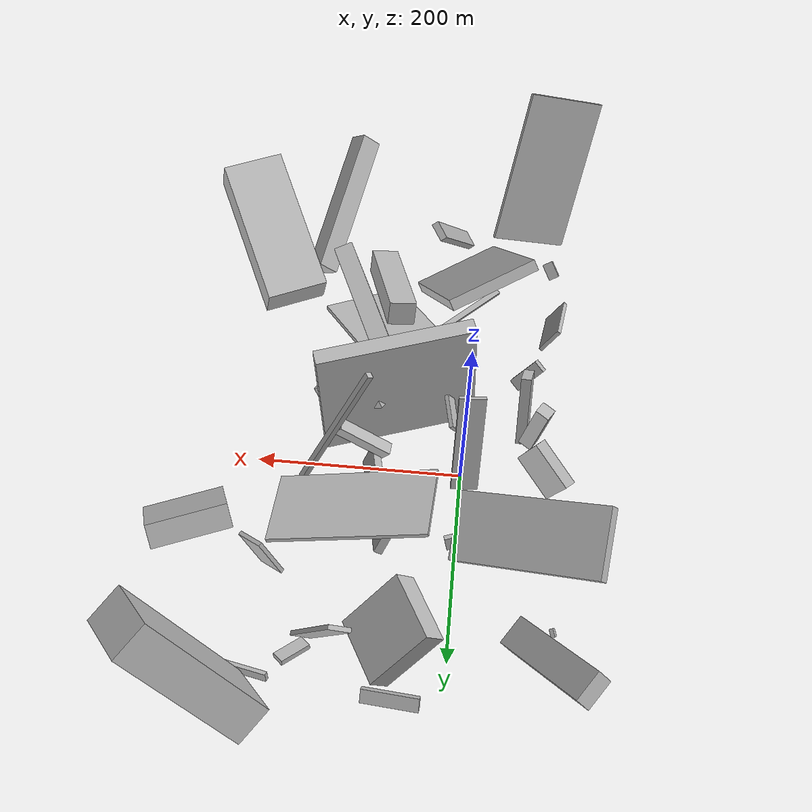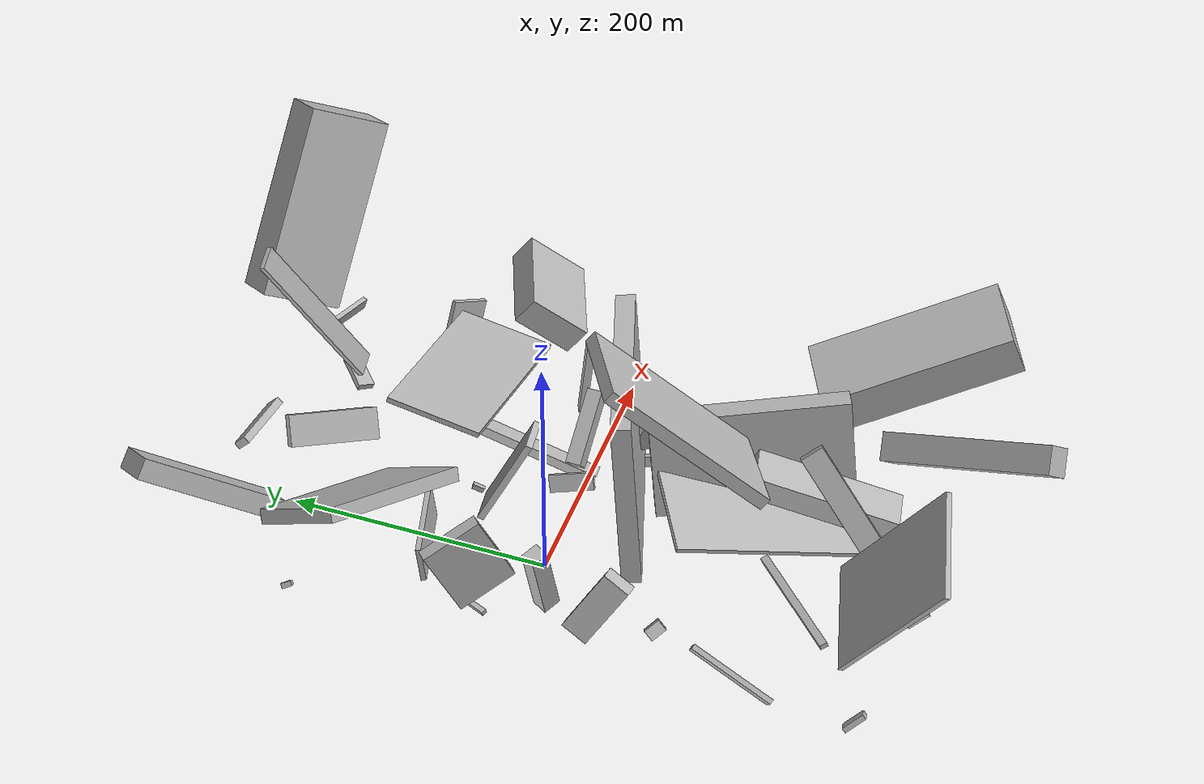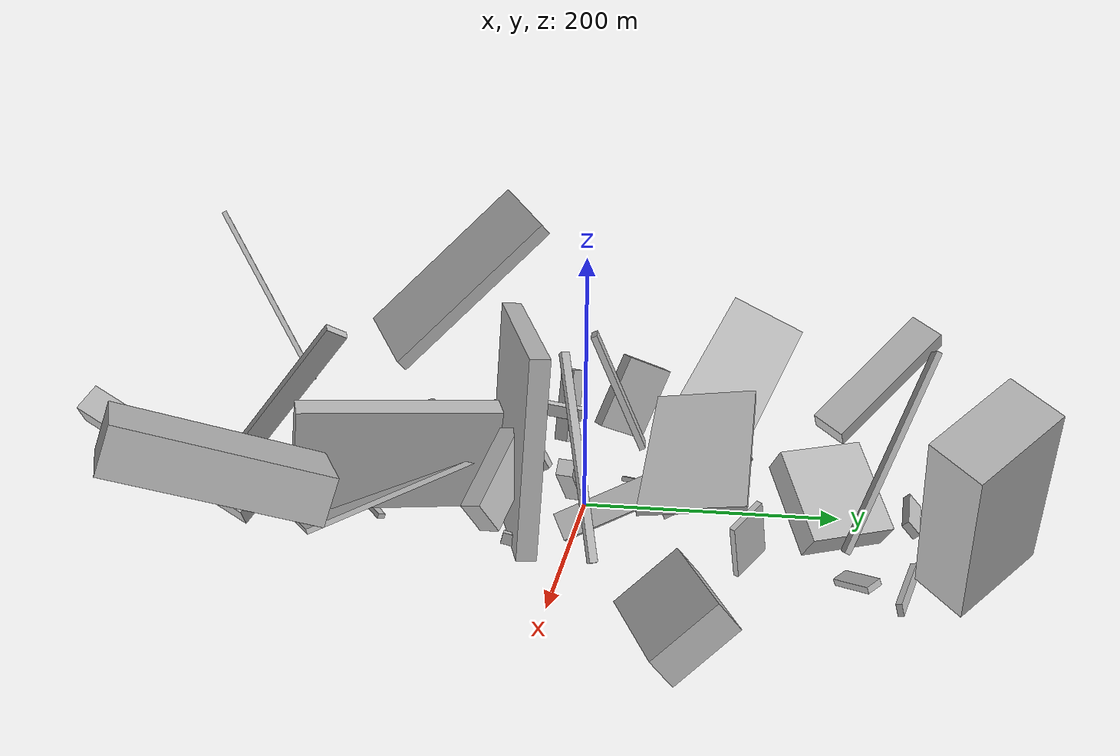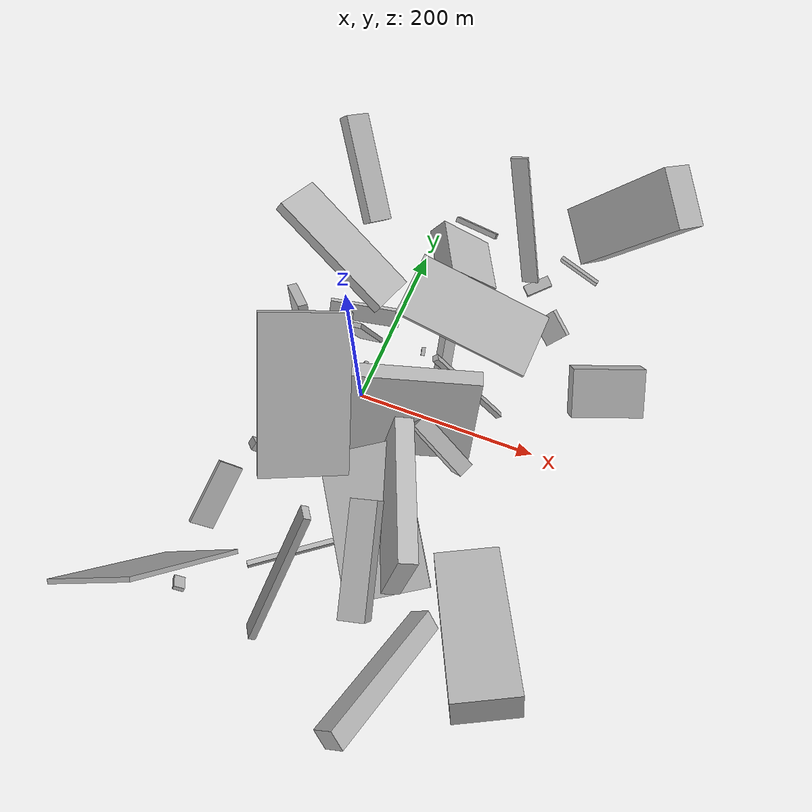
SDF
<sdf version="1.6">
 <world name="default">
  <model name="building_2">
   <static>0</static>
   <pose>-62.30996359319885 -24.676737310500073 34.17761925969418 -0.20309235522458113 -0.034233730035072484 1.0384694072110976</pose>
   <link name="link">
    <gravity>0</gravity>
    <pose>0 0 30.0 0 0 0</pose>
    <collision name="collision"><geometry><box><size>13 14 60</size></box></geometry></collision>
    <visual name="visual">
     <cast_shadows>0</cast_shadows>
     <geometry><box><size>13 14 60</size></box></geometry>
     <material>
      <script>
       <uri>model://HANNAS_wall/materials/scripts</uri>
       <uri>model://HANNAS_wall/materials/textures</uri>
       <name>vrc/HANNAS_wall</name>
      </script>
     </material>
    </visual>
   </link>
  </model>
  <model name="building_3">
   <static>0</static>
   <pose>-70.6835252391423 19.002689440386007 42.22310869759319 -0.10379882535049893 -0.41568116773262603 -0.8048089939529557</pose>
   <link name="link">
    <gravity>0</gravity>
    <pose>0 0 31.0 0 0 0</pose>
    <collision name="collision"><geometry><box><size>47 10 62</size></box></geometry></collision>
    <visual name="visual">
     <cast_shadows>0</cast_shadows>
     <geometry><box><size>47 10 62</size></box></geometry>
     <material>
      <script>
       <uri>model://HANNAS_wall/materials/scripts</uri>
       <uri>model://HANNAS_wall/materials/textures</uri>
       <name>vrc/HANNAS_wall</name>
      </script>
     </material>
    </visual>
   </link>
  </model>
  <model name="building_4">
   <static>0</static>
   <pose>18.91199895960152 -153.28543032838195 132.07125624042348 0.8041579647066868 -0.21410462562015903 -2.639426286338732</pose>
   <link name="link">
    <gravity>0</gravity>
    <pose>0 0 75.0 0 0 0</pose>
    <collision name="collision"><geometry><box><size>82 10 150</size></box></geometry></collision>
    <visual name="visual">
     <cast_shadows>0</cast_shadows>
     <geometry><box><size>82 10 150</size></box></geometry>
     <material>
      <script>
       <uri>model://HANNAS_wall/materials/scripts</uri>
       <uri>model://HANNAS_wall/materials/textures</uri>
       <name>vrc/HANNAS_wall</name>
      </script>
     </material>
    </visual>
   </link>
  </model>
  <model name="building_6">
   <static>0</static>
   <pose>106.7134492548971 -124.52359481797544 65.4602296512154 -0.27156495607750386 -1.3175282092120695 0.671573622714061</pose>
   <link name="link">
    <gravity>0</gravity>
    <pose>0 0 9.5 0 0 0</pose>
    <collision name="collision"><geometry><box><size>81 150 19</size></box></geometry></collision>
    <visual name="visual">
     <cast_shadows>0</cast_shadows>
     <geometry><box><size>81 150 19</size></box></geometry>
     <material>
      <script>
       <uri>model://HANNAS_wall/materials/scripts</uri>
       <uri>model://HANNAS_wall/materials/textures</uri>
       <name>vrc/HANNAS_wall</name>
      </script>
     </material>
    </visual>
   </link>
  </model>
  <model name="building_7">
   <static>0</static>
   <pose>0.29345417666929663 94.50894323390452 64.81087686684938 0.7648560636912773 0.9202908543781954 -2.5970790585344474</pose>
   <link name="link">
    <gravity>0</gravity>
    <pose>0 0 75.0 0 0 0</pose>
    <collision name="collision"><geometry><box><size>11 64 150</size></box></geometry></collision>
    <visual name="visual">
     <cast_shadows>0</cast_shadows>
     <geometry><box><size>11 64 150</size></box></geometry>
     <material>
      <script>
       <uri>model://HANNAS_wall/materials/scripts</uri>
       <uri>model://HANNAS_wall/materials/textures</uri>
       <name>vrc/HANNAS_wall</name>
      </script>
     </material>
    </visual>
   </link>
  </model>
  <model name="building_8">
   <static>0</static>
   <pose>66.03331357750645 160.53366012584337 35.18199939430771 1.5495517929880975 0.803483992353639 -2.665204391215836</pose>
   <link name="link">
    <gravity>0</gravity>
    <pose>0 0 33.0 0 0 0</pose>
    <collision name="collision"><geometry><box><size>24 73 66</size></box></geometry></collision>
    <visual name="visual">
     <cast_shadows>0</cast_shadows>
     <geometry><box><size>24 73 66</size></box></geometry>
     <material>
      <script>
       <uri>model://HANNAS_wall/materials/scripts</uri>
       <uri>model://HANNAS_wall/materials/textures</uri>
       <name>vrc/HANNAS_wall</name>
      </script>
     </material>
    </visual>
   </link>
  </model>
  <model name="building_9">
   <static>0</static>
   <pose>161.0188490262707 -216.40818578218892 44.59426059482485 -1.0247205011646208 -0.6785951792698831 2.5395631193376347</pose>
   <link name="link">
    <gravity>0</gravity>
    <pose>0 0 75.0 0 0 0</pose>
    <collision name="collision"><geometry><box><size>21 22 150</size></box></geometry></collision>
    <visual name="visual">
     <cast_shadows>0</cast_shadows>
     <geometry><box><size>21 22 150</size></box></geometry>
     <material>
      <script>
       <uri>model://HANNAS_wall/materials/scripts</uri>
       <uri>model://HANNAS_wall/materials/textures</uri>
       <name>vrc/HANNAS_wall</name>
      </script>
     </material>
    </visual>
   </link>
  </model>
  <model name="building_12">
   <static>0</static>
   <pose>-77.19294636462675 -269.51004808059054 20.479311321973288 -2.414408408393758 -0.7156847994212409 1.2544545302063814</pose>
   <link name="link">
    <gravity>0</gravity>
    <pose>0 0 9.0 0 0 0</pose>
    <collision name="collision"><geometry><box><size>4 11 18</size></box></geometry></collision>
    <visual name="visual">
     <cast_shadows>0</cast_shadows>
     <geometry><box><size>4 11 18</size></box></geometry>
     <material>
      <script>
       <uri>model://HANNAS_wall/materials/scripts</uri>
       <uri>model://HANNAS_wall/materials/textures</uri>
       <name>vrc/HANNAS_wall</name>
      </script>
     </material>
    </visual>
   </link>
  </model>
  <model name="building_13">
   <static>0</static>
   <pose>-61.45563250472297 -110.27774521881726 29.419442293491954 0.6772632266742373 -0.791249350278188 -2.806456134775632</pose>
   <link name="link">
    <gravity>0</gravity>
    <pose>0 0 4.5 0 0 0</pose>
    <collision name="collision"><geometry><box><size>34 13 9</size></box></geometry></collision>
    <visual name="visual">
     <cast_shadows>0</cast_shadows>
     <geometry><box><size>34 13 9</size></box></geometry>
     <material>
      <script>
       <uri>model://HANNAS_wall/materials/scripts</uri>
       <uri>model://HANNAS_wall/materials/textures</uri>
       <name>vrc/HANNAS_wall</name>
      </script>
     </material>
    </visual>
   </link>
  </model>
  <model name="building_15">
   <static>0</static>
   <pose>134.4348815428153 209.42326701230138 9.263737038040075 -2.602345141734881 -1.2617041934833815 -1.3393757203927898</pose>
   <link name="link">
    <gravity>0</gravity>
    <pose>0 0 6.5 0 0 0</pose>
    <collision name="collision"><geometry><box><size>5 31 13</size></box></geometry></collision>
    <visual name="visual">
     <cast_shadows>0</cast_shadows>
     <geometry><box><size>5 31 13</size></box></geometry>
     <material>
      <script>
       <uri>model://HANNAS_wall/materials/scripts</uri>
       <uri>model://HANNAS_wall/materials/textures</uri>
       <name>vrc/HANNAS_wall</name>
      </script>
     </material>
    </visual>
   </link>
  </model>
  <model name="building_19">
   <static>0</static>
   <pose>165.3981548431019 131.9306753980968 28.11357581600285 0.19492897491317457 -0.4069454097909742 2.481444547065339</pose>
   <link name="link">
    <gravity>0</gravity>
    <pose>0 0 22.0 0 0 0</pose>
    <collision name="collision"><geometry><box><size>30 4 44</size></box></geometry></collision>
    <visual name="visual">
     <cast_shadows>0</cast_shadows>
     <geometry><box><size>30 4 44</size></box></geometry>
     <material>
      <script>
       <uri>model://HANNAS_wall/materials/scripts</uri>
       <uri>model://HANNAS_wall/materials/textures</uri>
       <name>vrc/HANNAS_wall</name>
      </script>
     </material>
    </visual>
   </link>
  </model>
  <model name="building_21">
   <static>0</static>
   <pose>96.09918597208167 93.37554006197526 84.32470593603128 3.0131583381761766 -0.2653099415394041 3.121613230415533</pose>
   <link name="link">
    <gravity>0</gravity>
    <pose>0 0 2.0 0 0 0</pose>
    <collision name="collision"><geometry><box><size>150 74 4</size></box></geometry></collision>
    <visual name="visual">
     <cast_shadows>0</cast_shadows>
     <geometry><box><size>150 74 4</size></box></geometry>
     <material>
      <script>
       <uri>model://HANNAS_wall/materials/scripts</uri>
       <uri>model://HANNAS_wall/materials/textures</uri>
       <name>vrc/HANNAS_wall</name>
      </script>
     </material>
    </visual>
   </link>
  </model>
  <model name="building_22">
   <static>0</static>
   <pose>-57.32016889578158 191.70829434736396 55.509443132818994 0.553135075550662 0.7984209783057081 2.9151053955992294</pose>
   <link name="link">
    <gravity>0</gravity>
    <pose>0 0 60.5 0 0 0</pose>
    <collision name="collision"><geometry><box><size>16 29 121</size></box></geometry></collision>
    <visual name="visual">
     <cast_shadows>0</cast_shadows>
     <geometry><box><size>16 29 121</size></box></geometry>
     <material>
      <script>
       <uri>model://HANNAS_wall/materials/scripts</uri>
       <uri>model://HANNAS_wall/materials/textures</uri>
       <name>vrc/HANNAS_wall</name>
      </script>
     </material>
    </visual>
   </link>
  </model>
  <model name="building_24">
   <static>0</static>
   <pose>65.14352680283017 -34.716889262339464 84.10163516653577 1.5115871313730653 0.054670265715133955 0.31112831231474797</pose>
   <link name="link">
    <gravity>0</gravity>
    <pose>0 0 7.5 0 0 0</pose>
    <collision name="collision"><geometry><box><size>150 150 15</size></box></geometry></collision>
    <visual name="visual">
     <cast_shadows>0</cast_shadows>
     <geometry><box><size>150 150 15</size></box></geometry>
     <material>
      <script>
       <uri>model://HANNAS_wall/materials/scripts</uri>
       <uri>model://HANNAS_wall/materials/textures</uri>
       <name>vrc/HANNAS_wall</name>
      </script>
     </material>
    </visual>
   </link>
  </model>
  <model name="building_27">
   <static>0</static>
   <pose>207.1519929628996 255.325003335923 104.53418107179111 2.0273466470456127 -0.487873067766701 2.2152529398470784</pose>
   <link name="link">
    <gravity>0</gravity>
    <pose>0 0 19.0 0 0 0</pose>
    <collision name="collision"><geometry><box><size>66 150 38</size></box></geometry></collision>
    <visual name="visual">
     <cast_shadows>0</cast_shadows>
     <geometry><box><size>66 150 38</size></box></geometry>
     <material>
      <script>
       <uri>model://HANNAS_wall/materials/scripts</uri>
       <uri>model://HANNAS_wall/materials/textures</uri>
       <name>vrc/HANNAS_wall</name>
      </script>
     </material>
    </visual>
   </link>
  </model>
  <model name="building_28">
   <static>0</static>
   <pose>119.733350970395 12.83735176218203 81.10505599907323 1.54873872697791 -0.4752062776070064 0.49263243144404273</pose>
   <link name="link">
    <gravity>0</gravity>
    <pose>0 0 3.0 0 0 0</pose>
    <collision name="collision"><geometry><box><size>6 150 6</size></box></geometry></collision>
    <visual name="visual">
     <cast_shadows>0</cast_shadows>
     <geometry><box><size>6 150 6</size></box></geometry>
     <material>
      <script>
       <uri>model://HANNAS_wall/materials/scripts</uri>
       <uri>model://HANNAS_wall/materials/textures</uri>
       <name>vrc/HANNAS_wall</name>
      </script>
     </material>
    </visual>
   </link>
  </model>
  <model name="building_29">
   <static>0</static>
   <pose>-52.8680802202339 -62.968031831279234 37.91079397562643 1.3966895870444762 -1.094110129278476 -1.5453677189090365</pose>
   <link name="link">
    <gravity>0</gravity>
    <pose>0 0 5.0 0 0 0</pose>
    <collision name="collision"><geometry><box><size>71 22 10</size></box></geometry></collision>
    <visual name="visual">
     <cast_shadows>0</cast_shadows>
     <geometry><box><size>71 22 10</size></box></geometry>
     <material>
      <script>
       <uri>model://HANNAS_wall/materials/scripts</uri>
       <uri>model://HANNAS_wall/materials/textures</uri>
       <name>vrc/HANNAS_wall</name>
      </script>
     </material>
    </visual>
   </link>
  </model>
  <model name="building_32">
   <static>0</static>
   <pose>98.36758327277357 -239.57284530499376 37.94697689775019 1.2112305150024463 0.14851852011384406 -2.9360107500534327</pose>
   <link name="link">
    <gravity>0</gravity>
    <pose>0 0 57.0 0 0 0</pose>
    <collision name="collision"><geometry><box><size>27 24 114</size></box></geometry></collision>
    <visual name="visual">
     <cast_shadows>0</cast_shadows>
     <geometry><box><size>27 24 114</size></box></geometry>
     <material>
      <script>
       <uri>model://HANNAS_wall/materials/scripts</uri>
       <uri>model://HANNAS_wall/materials/textures</uri>
       <name>vrc/HANNAS_wall</name>
      </script>
     </material>
    </visual>
   </link>
  </model>
  <model name="building_33">
   <static>0</static>
   <pose>216.5967286770367 73.79220014179053 28.225632935341288 1.6318519131522162 -0.6868688184622107 1.9103775865644204</pose>
   <link name="link">
    <gravity>0</gravity>
    <pose>0 0 39.0 0 0 0</pose>
    <collision name="collision"><geometry><box><size>53 24 78</size></box></geometry></collision>
    <visual name="visual">
     <cast_shadows>0</cast_shadows>
     <geometry><box><size>53 24 78</size></box></geometry>
     <material>
      <script>
       <uri>model://HANNAS_wall/materials/scripts</uri>
       <uri>model://HANNAS_wall/materials/textures</uri>
       <name>vrc/HANNAS_wall</name>
      </script>
     </material>
    </visual>
   </link>
  </model>
  <model name="building_41">
   <static>0</static>
   <pose>139.6611738703471 -56.934981379208295 37.46484257308739 -0.953563234668767 -0.1915217396814878 1.1311744950933273</pose>
   <link name="link">
    <gravity>0</gravity>
    <pose>0 0 36.0 0 0 0</pose>
    <collision name="collision"><geometry><box><size>17 29 72</size></box></geometry></collision>
    <visual name="visual">
     <cast_shadows>0</cast_shadows>
     <geometry><box><size>17 29 72</size></box></geometry>
     <material>
      <script>
       <uri>model://HANNAS_wall/materials/scripts</uri>
       <uri>model://HANNAS_wall/materials/textures</uri>
       <name>vrc/HANNAS_wall</name>
      </script>
     </material>
    </visual>
   </link>
  </model>
  <model name="building_42">
   <static>0</static>
   <pose>72.27261263297993 1.928060259698611 37.038223384212635 -0.11248894340842275 0.9291209469282989 -0.1602771210590505</pose>
   <link name="link">
    <gravity>0</gravity>
    <pose>0 0 29.0 0 0 0</pose>
    <collision name="collision"><geometry><box><size>12 12 58</size></box></geometry></collision>
    <visual name="visual">
     <cast_shadows>0</cast_shadows>
     <geometry><box><size>12 12 58</size></box></geometry>
     <material>
      <script>
       <uri>model://HANNAS_wall/materials/scripts</uri>
       <uri>model://HANNAS_wall/materials/textures</uri>
       <name>vrc/HANNAS_wall</name>
      </script>
     </material>
    </visual>
   </link>
  </model>
  <model name="building_43">
   <static>0</static>
   <pose>179.11323336406917 234.35731378997065 17.734332190789853 -0.16948846943280071 0.1999398601872669 -1.874629743123412</pose>
   <link name="link">
    <gravity>0</gravity>
    <pose>0 0 4.5 0 0 0</pose>
    <collision name="collision"><geometry><box><size>4 51 9</size></box></geometry></collision>
    <visual name="visual">
     <cast_shadows>0</cast_shadows>
     <geometry><box><size>4 51 9</size></box></geometry>
     <material>
      <script>
       <uri>model://HANNAS_wall/materials/scripts</uri>
       <uri>model://HANNAS_wall/materials/textures</uri>
       <name>vrc/HANNAS_wall</name>
      </script>
     </material>
    </visual>
   </link>
  </model>
  <model name="building_51">
   <static>0</static>
   <pose>100.20037388192229 223.4659638206688 88.6776314916091 0.9217122151943012 -1.082546309353596 2.2392901535232537</pose>
   <link name="link">
    <gravity>0</gravity>
    <pose>0 0 9.5 0 0 0</pose>
    <collision name="collision"><geometry><box><size>150 4 19</size></box></geometry></collision>
    <visual name="visual">
     <cast_shadows>0</cast_shadows>
     <geometry><box><size>150 4 19</size></box></geometry>
     <material>
      <script>
       <uri>model://HANNAS_wall/materials/scripts</uri>
       <uri>model://HANNAS_wall/materials/textures</uri>
       <name>vrc/HANNAS_wall</name>
      </script>
     </material>
    </visual>
   </link>
  </model>
  <model name="building_53">
   <static>0</static>
   <pose>22.485632997669843 -237.17561123306962 90.56328079723443 2.14035707063819 0.4697131788378337 2.2284113103379006</pose>
   <link name="link">
    <gravity>0</gravity>
    <pose>0 0 3.5 0 0 0</pose>
    <collision name="collision"><geometry><box><size>18 150 7</size></box></geometry></collision>
    <visual name="visual">
     <cast_shadows>0</cast_shadows>
     <geometry><box><size>18 150 7</size></box></geometry>
     <material>
      <script>
       <uri>model://HANNAS_wall/materials/scripts</uri>
       <uri>model://HANNAS_wall/materials/textures</uri>
       <name>vrc/HANNAS_wall</name>
      </script>
     </material>
    </visual>
   </link>
  </model>
  <model name="building_55">
   <static>0</static>
   <pose>47.68930193889531 66.12944365605624 12.486799177951703 0.3796593283941889 1.0929743080563683 2.210710948986525</pose>
   <link name="link">
    <gravity>0</gravity>
    <pose>0 0 4.5 0 0 0</pose>
    <collision name="collision"><geometry><box><size>4 4 9</size></box></geometry></collision>
    <visual name="visual">
     <cast_shadows>0</cast_shadows>
     <geometry><box><size>4 4 9</size></box></geometry>
     <material>
      <script>
       <uri>model://HANNAS_wall/materials/scripts</uri>
       <uri>model://HANNAS_wall/materials/textures</uri>
       <name>vrc/HANNAS_wall</name>
      </script>
     </material>
    </visual>
   </link>
  </model>
  <model name="building_56">
   <static>0</static>
   <pose>-3.2494280128241826 45.23419563200081 51.57630809920189 -0.06078154701190478 -0.4172386255317788 1.6921092389923906</pose>
   <link name="link">
    <gravity>0</gravity>
    <pose>0 0 48.5 0 0 0</pose>
    <collision name="collision"><geometry><box><size>5 25 97</size></box></geometry></collision>
    <visual name="visual">
     <cast_shadows>0</cast_shadows>
     <geometry><box><size>5 25 97</size></box></geometry>
     <material>
      <script>
       <uri>model://HANNAS_wall/materials/scripts</uri>
       <uri>model://HANNAS_wall/materials/textures</uri>
       <name>vrc/HANNAS_wall</name>
      </script>
     </material>
    </visual>
   </link>
  </model>
  <model name="building_57">
   <static>0</static>
   <pose>116.75703831415156 -45.31528757038009 15.593730150938732 -2.7467628607580754 -1.2740332579425808 1.2747708529735873</pose>
   <link name="link">
    <gravity>0</gravity>
    <pose>0 0 5.5 0 0 0</pose>
    <collision name="collision"><geometry><box><size>9 4 11</size></box></geometry></collision>
    <visual name="visual">
     <cast_shadows>0</cast_shadows>
     <geometry><box><size>9 4 11</size></box></geometry>
     <material>
      <script>
       <uri>model://HANNAS_wall/materials/scripts</uri>
       <uri>model://HANNAS_wall/materials/textures</uri>
       <name>vrc/HANNAS_wall</name>
      </script>
     </material>
    </visual>
   </link>
  </model>
  <model name="building_60">
   <static>0</static>
   <pose>180.00502930043342 -156.11668152106574 67.73909869516562 -0.055775351284303706 -1.2334023483290326 2.0856105067314683</pose>
   <link name="link">
    <gravity>0</gravity>
    <pose>0 0 75.0 0 0 0</pose>
    <collision name="collision"><geometry><box><size>35 61 150</size></box></geometry></collision>
    <visual name="visual">
     <cast_shadows>0</cast_shadows>
     <geometry><box><size>35 61 150</size></box></geometry>
     <material>
      <script>
       <uri>model://HANNAS_wall/materials/scripts</uri>
       <uri>model://HANNAS_wall/materials/textures</uri>
       <name>vrc/HANNAS_wall</name>
      </script>
     </material>
    </visual>
   </link>
  </model>
  <model name="building_61">
   <static>0</static>
   <pose>40.46401276685596 -162.65127866857446 31.222496582178074 1.4042389515344404 -0.27639518961898735 2.145240436594189</pose>
   <link name="link">
    <gravity>0</gravity>
    <pose>0 0 43.0 0 0 0</pose>
    <collision name="collision"><geometry><box><size>150 4 86</size></box></geometry></collision>
    <visual name="visual">
     <cast_shadows>0</cast_shadows>
     <geometry><box><size>150 4 86</size></box></geometry>
     <material>
      <script>
       <uri>model://HANNAS_wall/materials/scripts</uri>
       <uri>model://HANNAS_wall/materials/textures</uri>
       <name>vrc/HANNAS_wall</name>
      </script>
     </material>
    </visual>
   </link>
  </model>
  <model name="building_62">
   <static>0</static>
   <pose>46.32033810334914 246.71892643725113 21.45474002066966 -0.8510188739220247 0.06315825586780227 -0.1082498567358074</pose>
   <link name="link">
    <gravity>0</gravity>
    <pose>0 0 3.0 0 0 0</pose>
    <collision name="collision"><geometry><box><size>52 13 6</size></box></geometry></collision>
    <visual name="visual">
     <cast_shadows>0</cast_shadows>
     <geometry><box><size>52 13 6</size></box></geometry>
     <material>
      <script>
       <uri>model://HANNAS_wall/materials/scripts</uri>
       <uri>model://HANNAS_wall/materials/textures</uri>
       <name>vrc/HANNAS_wall</name>
      </script>
     </material>
    </visual>
   </link>
  </model>
  <model name="building_63">
   <static>0</static>
   <pose>80.38277117769817 59.648531639378625 46.96808945368767 2.362181719925024 -0.93775374381307 -2.2938243393300564</pose>
   <link name="link">
    <gravity>0</gravity>
    <pose>0 0 4.0 0 0 0</pose>
    <collision name="collision"><geometry><box><size>21 150 8</size></box></geometry></collision>
    <visual name="visual">
     <cast_shadows>0</cast_shadows>
     <geometry><box><size>21 150 8</size></box></geometry>
     <material>
      <script>
       <uri>model://HANNAS_wall/materials/scripts</uri>
       <uri>model://HANNAS_wall/materials/textures</uri>
       <name>vrc/HANNAS_wall</name>
      </script>
     </material>
    </visual>
   </link>
  </model>
  <model name="building_64">
   <static>0</static>
   <pose>-29.359091635101464 79.91590786993234 21.206328826701935 0.13707174948146228 -0.1586919033499634 -2.865632832994465</pose>
   <link name="link">
    <gravity>0</gravity>
    <pose>0 0 14.0 0 0 0</pose>
    <collision name="collision"><geometry><box><size>79 4 28</size></box></geometry></collision>
    <visual name="visual">
     <cast_shadows>0</cast_shadows>
     <geometry><box><size>79 4 28</size></box></geometry>
     <material>
      <script>
       <uri>model://HANNAS_wall/materials/scripts</uri>
       <uri>model://HANNAS_wall/materials/textures</uri>
       <name>vrc/HANNAS_wall</name>
      </script>
     </material>
    </visual>
   </link>
  </model>
  <model name="building_66">
   <static>0</static>
   <pose>-85.44758097232034 -171.26673763111364 32.20599195628331 0.9884792606878118 -0.4069727350552514 1.4355777518529544</pose>
   <link name="link">
    <gravity>0</gravity>
    <pose>0 0 2.0 0 0 0</pose>
    <collision name="collision"><geometry><box><size>68 28 4</size></box></geometry></collision>
    <visual name="visual">
     <cast_shadows>0</cast_shadows>
     <geometry><box><size>68 28 4</size></box></geometry>
     <material>
      <script>
       <uri>model://HANNAS_wall/materials/scripts</uri>
       <uri>model://HANNAS_wall/materials/textures</uri>
       <name>vrc/HANNAS_wall</name>
      </script>
     </material>
    </visual>
   </link>
  </model>
  <model name="building_67">
   <static>0</static>
   <pose>-56.00955370235789 31.293268601852006 3.4969008080105715 3.1128538903025027 -1.3193515240725358 2.7547807748764024</pose>
   <link name="link">
    <gravity>0</gravity>
    <pose>0 0 2.0 0 0 0</pose>
    <collision name="collision"><geometry><box><size>4 16 4</size></box></geometry></collision>
    <visual name="visual">
     <cast_shadows>0</cast_shadows>
     <geometry><box><size>4 16 4</size></box></geometry>
     <material>
      <script>
       <uri>model://HANNAS_wall/materials/scripts</uri>
       <uri>model://HANNAS_wall/materials/textures</uri>
       <name>vrc/HANNAS_wall</name>
      </script>
     </material>
    </visual>
   </link>
  </model>
  <model name="building_68">
   <static>0</static>
   <pose>16.75363762701838 -187.2754563813089 14.013722889217602 2.971702378318416 -0.25745936569890165 -0.8283585358865754</pose>
   <link name="link">
    <gravity>0</gravity>
    <pose>0 0 2.0 0 0 0</pose>
    <collision name="collision"><geometry><box><size>6 112 4</size></box></geometry></collision>
    <visual name="visual">
     <cast_shadows>0</cast_shadows>
     <geometry><box><size>6 112 4</size></box></geometry>
     <material>
      <script>
       <uri>model://HANNAS_wall/materials/scripts</uri>
       <uri>model://HANNAS_wall/materials/textures</uri>
       <name>vrc/HANNAS_wall</name>
      </script>
     </material>
    </visual>
   </link>
  </model>
  <model name="building_70">
   <static>0</static>
   <pose>-50.460224899439616 -241.4327274582543 83.69407864941063 0.38029164006853156 0.42817290509310674 -1.1202589157008231</pose>
   <link name="link">
    <gravity>0</gravity>
    <pose>0 0 75.0 0 0 0</pose>
    <collision name="collision"><geometry><box><size>4 78 150</size></box></geometry></collision>
    <visual name="visual">
     <cast_shadows>0</cast_shadows>
     <geometry><box><size>4 78 150</size></box></geometry>
     <material>
      <script>
       <uri>model://HANNAS_wall/materials/scripts</uri>
       <uri>model://HANNAS_wall/materials/textures</uri>
       <name>vrc/HANNAS_wall</name>
      </script>
     </material>
    </visual>
   </link>
  </model>
  <model name="building_73">
   <static>0</static>
   <pose>10.246412769171299 -18.756946593904498 76.825796882932 -0.5502026042016808 -0.2093395113186195 -1.3546047819593752</pose>
   <link name="link">
    <gravity>0</gravity>
    <pose>0 0 6.5 0 0 0</pose>
    <collision name="collision"><geometry><box><size>33 4 13</size></box></geometry></collision>
    <visual name="visual">
     <cast_shadows>0</cast_shadows>
     <geometry><box><size>33 4 13</size></box></geometry>
     <material>
      <script>
       <uri>model://HANNAS_wall/materials/scripts</uri>
       <uri>model://HANNAS_wall/materials/textures</uri>
       <name>vrc/HANNAS_wall</name>
      </script>
     </material>
    </visual>
   </link>
  </model>
  <model name="building_74">
   <static>0</static>
   <pose>-94.12492015919032 170.6895954485073 12.909394415984368 1.0978691037346515 0.5821582909047317 0.09017156773780029</pose>
   <link name="link">
    <gravity>0</gravity>
    <pose>0 0 4.0 0 0 0</pose>
    <collision name="collision"><geometry><box><size>4 4 8</size></box></geometry></collision>
    <visual name="visual">
     <cast_shadows>0</cast_shadows>
     <geometry><box><size>4 4 8</size></box></geometry>
     <material>
      <script>
       <uri>model://HANNAS_wall/materials/scripts</uri>
       <uri>model://HANNAS_wall/materials/textures</uri>
       <name>vrc/HANNAS_wall</name>
      </script>
     </material>
    </visual>
   </link>
  </model>
 </world>
</sdf>
